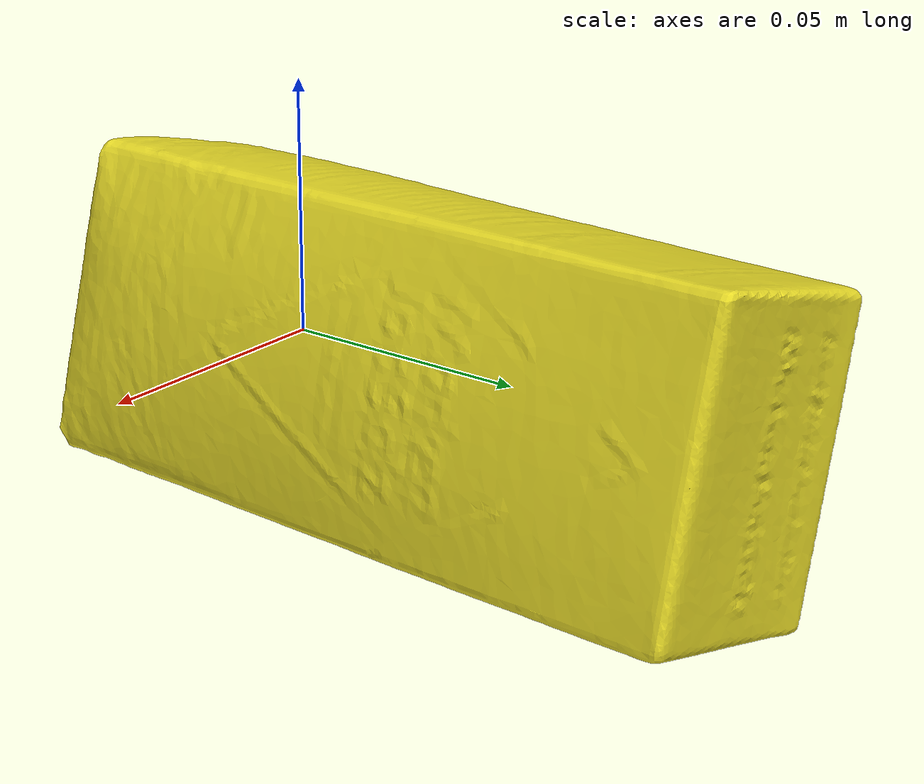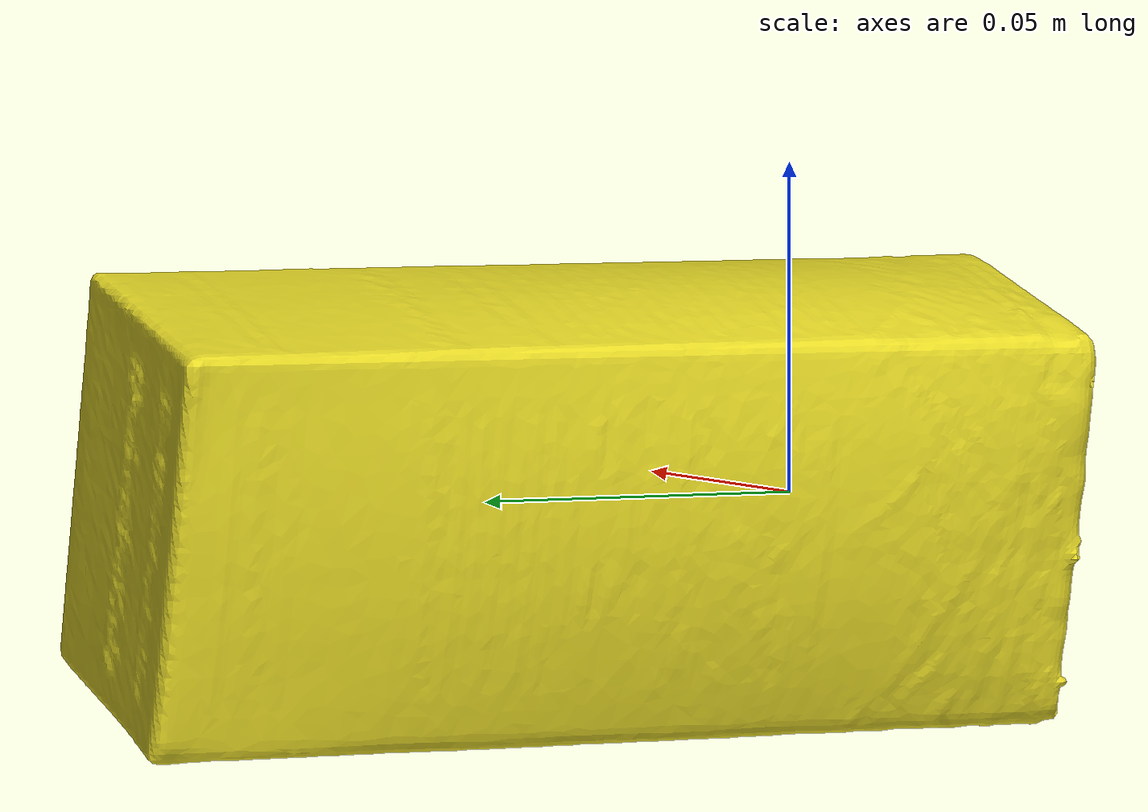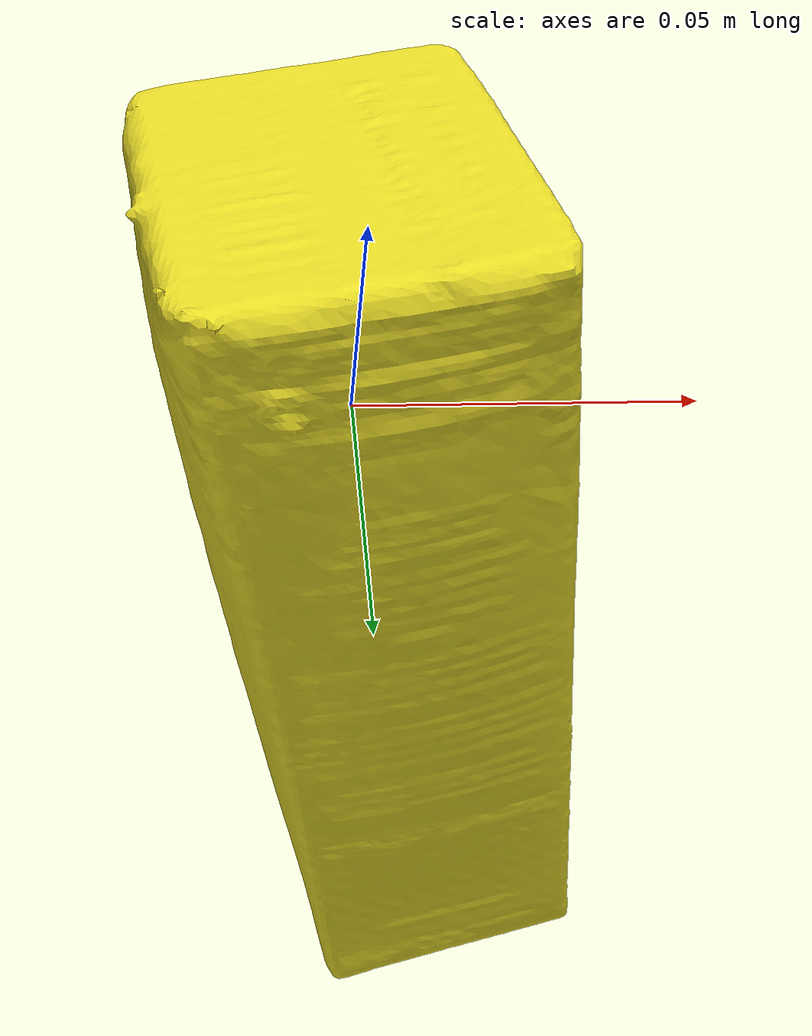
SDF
<?xml version='1.0'?>
<sdf version="1.4">
  <model name="YellowSaltCube2">
    <static>false</static>
    <link name="link">
      <inertial>
        <pose>0.002337138250715941 0.03260211455188414 -0.0003751460583807539 1.567753314307559 -0.2742612377747794 -0.030884271410012817</pose>
        <mass>0.04580303441983887</mass>
        <inertia>
          <ixx>9.34429308222818e-05</ixx>
          <ixy>2.876665486928278e-21</ixy>
          <ixz>4.8161158249405966e-21</ixz>
          <iyy>8.764478091261858e-05</iyy>
          <iyz>1.274283664260114e-21</iyz>
          <izz>2.4392228645224966e-05</izz>
        </inertia>
      </inertial>
      <collision name="collision">
        <geometry>
          <mesh>
            <!-- Use a downsampled mesh for collisions -->
            <uri>model:///YellowSaltCube2/YellowSaltCube2_250_collision.obj</uri>
	        </mesh>
        </geometry>
        <surface>
      </surface>
      </collision>
      <visual name="visual">
        <geometry>
          <mesh>
            <uri>model:///YellowSaltCube2/YellowSaltCube2_25k_tex.obj</uri>
	        </mesh>
        </geometry>
        <material>
          <script>
            <uri>model:///YellowSaltCube2/YellowSaltCube2.material</uri>
            <name>YellowSaltCube2</name>
          </script>
        </material>
      </visual>
    </link>
  </model>
</sdf>
